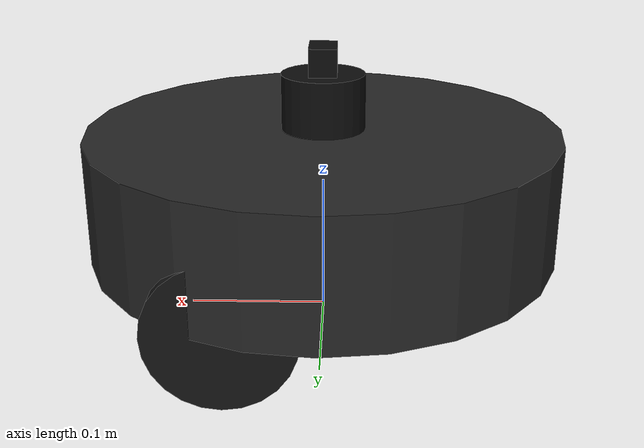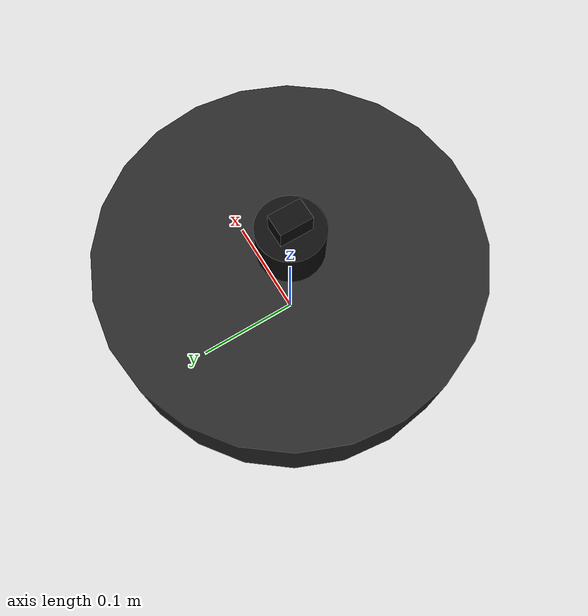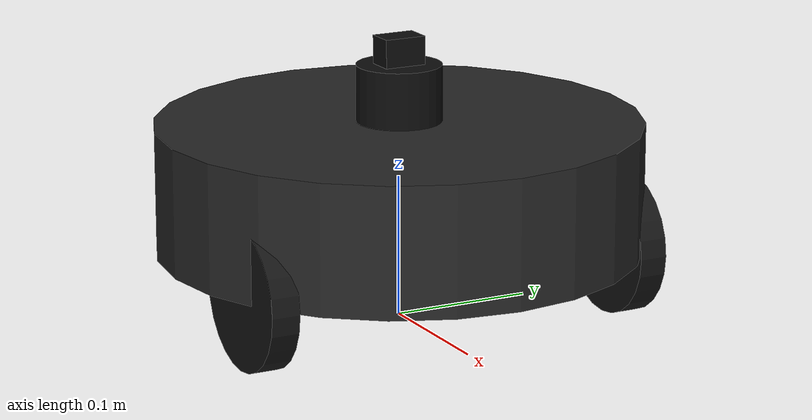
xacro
<?xml version="1.0"?>
<robot name="following_bot" xmlns:xacro="http://www.ros.org/wiki/xacro">

  <xacro:property name="disc_radius" value="0.17"/>
  <xacro:property name="disc_height" value="0.09"/>
  <xacro:property name="disc_mass" value="3.0"/>
  <xacro:property name="wheel_radius" value="0.05"/>
  <xacro:property name="wheel_width" value="0.02"/>
  <xacro:property name="wheel_mass" value="0.15"/>
  <xacro:property name="wheel_separation" value="0.28"/>
  <xacro:property name="caster_radius" value="0.025"/>
  <xacro:property name="lidar_radius" value="0.03"/>
  <xacro:property name="lidar_height" value="0.04"/>
  <xacro:property name="camera_mount_z_offset" value="0.03"/>

  <material name="bot_body_gray">
    <color rgba="0.15 0.15 0.15 1.0"/>
  </material>
  <material name="bot_bumper_black">
    <color rgba="0.05 0.05 0.05 1.0"/>
  </material>
  <material name="bot_wheel_black">
    <color rgba="0.08 0.08 0.08 1.0"/>
  </material>
  <material name="camera_link_dark_material">
    <color rgba="0.05 0.05 0.05 1.0"/>
  </material>

  <link name="base_footprint"/>

  <joint name="base_footprint_joint" type="fixed">
    <parent link="base_footprint"/>
    <child link="base_link"/>
    <origin xyz="0 0 ${wheel_radius + disc_height/2}" rpy="0 0 0"/>
  </joint>

  <link name="base_link">
    <visual>
      <origin xyz="0 0 0" rpy="0 0 0"/>
      <geometry>
        <cylinder radius="${disc_radius}" length="${disc_height}"/>
      </geometry>
      <material name="bot_body_gray"/>
    </visual>
    <visual>
      <origin xyz="0 0 ${-disc_height/2 + 0.01}" rpy="0 0 0"/>
      <geometry>
        <cylinder radius="${disc_radius - 0.005}" length="0.015"/>
      </geometry>
      <material name="bot_bumper_black"/>
    </visual>
    <collision>
      <origin xyz="0 0 0" rpy="0 0 0"/>
      <geometry>
        <cylinder radius="${disc_radius}" length="${disc_height}"/>
      </geometry>
    </collision>
    <inertial>
      <mass value="${disc_mass}"/>
      <origin xyz="0 0 0"/>
      <inertia ixx="${(disc_mass/12.0)*(3*disc_radius*disc_radius + disc_height*disc_height)}"
               iyy="${(disc_mass/12.0)*(3*disc_radius*disc_radius + disc_height*disc_height)}"
               izz="${(disc_mass/2.0)*disc_radius*disc_radius}"
               ixy="0" ixz="0" iyz="0"/>
    </inertial>
  </link>

  <gazebo reference="base_link">
    <material>Gazebo/DarkGrey</material>
  </gazebo>

  <xacro:macro name="drive_wheel" params="name y_sign">
    <link name="${name}_wheel">
      <visual>
        <origin xyz="0 0 0" rpy="1.5708 0 0"/>
        <geometry>
          <cylinder radius="${wheel_radius}" length="${wheel_width}"/>
        </geometry>
        <material name="bot_wheel_black"/>
      </visual>
      <collision>
        <origin xyz="0 0 0" rpy="1.5708 0 0"/>
        <geometry>
          <cylinder radius="${wheel_radius}" length="${wheel_width}"/>
        </geometry>
      </collision>
      <inertial>
        <mass value="${wheel_mass}"/>
        <origin xyz="0 0 0"/>
        <inertia ixx="${(wheel_mass/12.0)*(3*wheel_radius*wheel_radius + wheel_width*wheel_width)}"
                 iyy="${(wheel_mass/12.0)*(3*wheel_radius*wheel_radius + wheel_width*wheel_width)}"
                 izz="${(wheel_mass/2.0)*wheel_radius*wheel_radius}"
                 ixy="0" ixz="0" iyz="0"/>
      </inertial>
    </link>
    <joint name="${name}_wheel_joint" type="continuous">
      <parent link="base_link"/>
      <child link="${name}_wheel"/>
      <origin xyz="0.06 ${y_sign*wheel_separation/2} ${-disc_height/2}" rpy="0 0 0"/>
      <axis xyz="0 1 0"/>
      <dynamics damping="0.1" friction="0.05"/>
    </joint>
    <gazebo reference="${name}_wheel">
      <material>Gazebo/Black</material>
      <mu1>1.2</mu1>
      <mu2>1.2</mu2>
    </gazebo>
  </xacro:macro>

  <xacro:drive_wheel name="left" y_sign="1"/>
  <xacro:drive_wheel name="right" y_sign="-1"/>

  <link name="caster_wheel">
    <visual>
      <geometry>
        <sphere radius="${caster_radius}"/>
      </geometry>
      <material name="bot_wheel_black"/>
    </visual>
    <collision>
      <geometry>
        <sphere radius="${caster_radius}"/>
      </geometry>
    </collision>
    <inertial>
      <mass value="0.05"/>
      <origin xyz="0 0 0"/>
      <inertia ixx="0.00001" iyy="0.00001" izz="0.00001" ixy="0" ixz="0" iyz="0"/>
    </inertial>
  </link>
  <joint name="caster_wheel_joint" type="fixed">
    <parent link="base_link"/>
    <child link="caster_wheel"/>
    <origin xyz="${-(disc_radius - caster_radius - 0.02)} 0 ${caster_radius - (wheel_radius + disc_height/2)}" rpy="0 0 0"/>
  </joint>
  <gazebo reference="caster_wheel">
    <material>Gazebo/Black</material>
    <mu1>0.001</mu1>
    <mu2>0.001</mu2>
  </gazebo>

  <link name="lidar_link">
    <visual>
      <origin xyz="0 0 0" rpy="0 0 0"/>
      <geometry>
        <cylinder radius="${lidar_radius}" length="${lidar_height}"/>
      </geometry>
      <material name="bot_bumper_black"/>
    </visual>
    <collision>
      <origin xyz="0 0 0" rpy="0 0 0"/>
      <geometry>
        <cylinder radius="${lidar_radius}" length="${lidar_height}"/>
      </geometry>
    </collision>
    <inertial>
      <mass value="0.05"/>
      <origin xyz="0 0 0"/>
      <inertia ixx="0.00002" iyy="0.00002" izz="0.00002" ixy="0" ixz="0" iyz="0"/>
    </inertial>
  </link>
  <joint name="lidar_joint" type="fixed">
    <parent link="base_link"/>
    <child link="lidar_link"/>
    <origin xyz="0 0 ${disc_height/2 + lidar_height/2}" rpy="0 0 0"/>
  </joint>
  <gazebo reference="lidar_link">
    <sensor name="lidar_sensor" type="gpu_lidar">
      <always_on>true</always_on>
      <update_rate>10</update_rate>
      <topic>scan</topic>
      <ray>
        <scan>
          <horizontal>
            <samples>360</samples>
            <min_angle>-3.14159</min_angle>
            <max_angle>3.14159</max_angle>
          </horizontal>
          <vertical>
            <samples>1</samples>
          </vertical>
        </scan>
        <range>
          <min>0.12</min>
          <max>10.0</max>
          <resolution>0.01</resolution>
        </range>
      </ray>
    </sensor>
  </gazebo>

  <link name="camera_link">
    <visual>
      <origin xyz="0 0 0" rpy="0 0 0"/>
      <geometry>
        <box size="0.02 0.03 0.02"/>
      </geometry>
      <material name="camera_link_dark_material"/>
    </visual>
    <collision>
      <origin xyz="0 0 0" rpy="0 0 0"/>
      <geometry>
        <box size="0.02 0.03 0.02"/>
      </geometry>
    </collision>
    <inertial>
      <mass value="0.02"/>
      <origin xyz="0 0 0"/>
      <inertia ixx="0.000001" iyy="0.000001" izz="0.000001" ixy="0" ixz="0" iyz="0"/>
    </inertial>
  </link>
  <joint name="camera_joint" type="fixed">
    <parent link="lidar_link"/>
    <child link="camera_link"/>
    <origin xyz="0 0 ${camera_mount_z_offset}" rpy="0 0 0"/>
  </joint>
  <gazebo reference="camera_link">
    <sensor name="camera_sensor" type="camera">
      <always_on>true</always_on>
      <update_rate>10</update_rate>
      <topic>/following_bot/camera/rgb</topic>
      <camera>
        <horizontal_fov>1.047</horizontal_fov>
        <image>
          <width>640</width>
          <height>480</height>
          <format>R8G8B8</format>
        </image>
        <clip>
          <near>0.05</near>
          <far>20</far>
        </clip>
      </camera>
    </sensor>
  </gazebo>

  <ros2_control name="following_bot_system" type="system">
    <hardware>
      <plugin>gz_ros2_control/GazeboSimSystem</plugin>
    </hardware>
    <joint name="left_wheel_joint">
      <command_interface name="velocity"/>
      <state_interface name="position"/>
      <state_interface name="velocity"/>
    </joint>
    <joint name="right_wheel_joint">
      <command_interface name="velocity"/>
      <state_interface name="position"/>
      <state_interface name="velocity"/>
    </joint>
  </ros2_control>

  <gazebo>
    <plugin filename="gz_ros2_control-system" name="gz_ros2_control::GazeboSimROS2ControlPlugin">
      <parameters>$(find following_bot)/config/following_bot_controllers.yaml</parameters>
    </plugin>
  </gazebo>

</robot>
